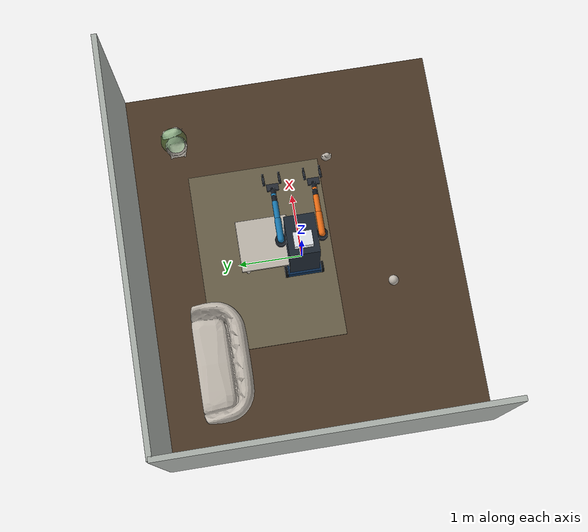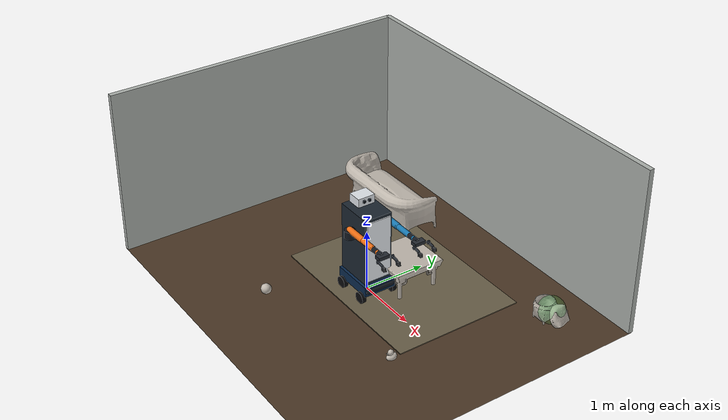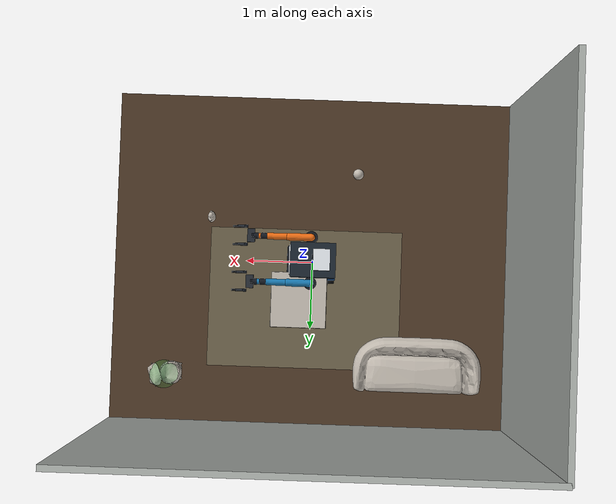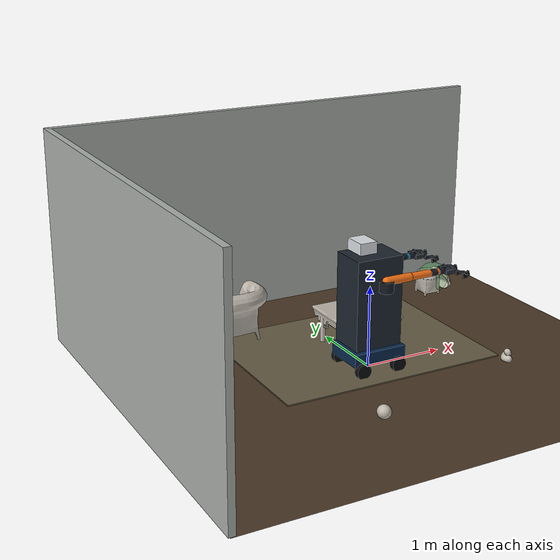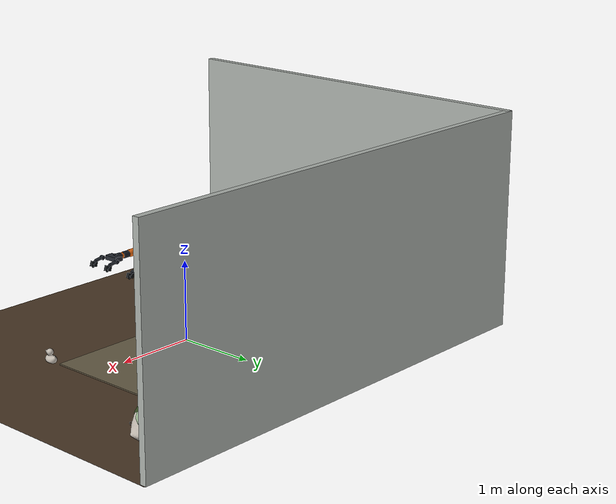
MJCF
<mujoco model="hwr_living_room_v1">
  <compiler angle="radian" autolimits="true" inertiafromgeom="true" meshdir="../../household_v1" texturedir="../../household_v1"/>
  <option timestep="0.002" gravity="0 0 -9.81" integrator="implicitfast">
    <flag multiccd="enable"/>
  </option>
  <size memory="128M"/>
  <visual>
    <global offwidth="960" offheight="640"/>
    <quality shadowsize="4096"/>
    <headlight ambient="0.20 0.20 0.20" diffuse="0.50 0.50 0.48" specular="0.18 0.18 0.18"/>
  </visual>
  <asset>
    <include file="../common/robot_assets.xml"/>
    <texture name="living_floor_tex" type="2d" builtin="checker" width="1024" height="1024" rgb1="0.23 0.17 0.12" rgb2="0.36 0.27 0.18" mark="edge" markrgb="0.08 0.06 0.04"/>
    <texture name="living_wall_tex" type="2d" builtin="gradient" width="512" height="512" rgb1="0.80 0.78 0.71" rgb2="0.55 0.61 0.64"/>
    <texture name="rug_tex" type="2d" builtin="checker" width="512" height="512" rgb1="0.14 0.27 0.31" rgb2="0.68 0.47 0.25"/>
    <material name="living_floor" texture="living_floor_tex" texrepeat="10 8" reflectance="0.06" roughness="0.72"/>
    <material name="living_wall" texture="living_wall_tex" texrepeat="2 2" roughness="0.85"/>
    <material name="rug" texture="rug_tex" texrepeat="7 5" roughness="0.95"/>
    <mesh name="living_sofa_mesh" file="living_sofa/living_sofa.obj"/>
    <texture name="living_sofa_tex" type="2d" file="living_sofa/sofa_02.png"/>
    <material name="living_sofa_mat" texture="living_sofa_tex" roughness="0.62"/>
    <mesh name="living_table_mesh" file="living_tea_table/living_tea_table.obj"/>
    <texture name="living_table_tex" type="2d" file="living_tea_table/chinese_tea_table.png"/>
    <material name="living_table_mat" texture="living_table_tex" roughness="0.48"/>
    <mesh name="living_basket_mesh" file="living_storage_basket/living_storage_basket.obj"/>
    <texture name="living_basket_tex" type="2d" file="living_storage_basket/wicker_basket_02.png"/>
    <material name="living_basket_mat" texture="living_basket_tex" roughness="0.84"/>
    <mesh name="toy_duck_mesh" file="toy_duck/toy_duck.obj"/>
    <texture name="toy_duck_tex" type="2d" file="toy_duck/rubber_duck_toy.png"/>
    <material name="toy_duck_mat" texture="toy_duck_tex" roughness="0.42"/>
    <mesh name="toy_football_mesh" file="toy_football/toy_football.obj"/>
    <texture name="toy_football_tex" type="2d" file="toy_football/football.png"/>
    <material name="toy_football_mat" texture="toy_football_tex" roughness="0.68"/>
  </asset>
  <default>
    <include file="../common/robot_defaults.xml"/>
  </default>
  <worldbody>
    <geom name="floor" type="plane" size="3 2.5 0.1" material="living_floor" friction="1.0 0.01 0.001"/>
    <geom name="wall_north" type="box" pos="0 2.48 1.35" size="3 0.04 1.35" material="living_wall"/>
    <geom name="wall_west" type="box" pos="-2.98 0 1.35" size="0.04 2.5 1.35" material="living_wall"/>
    <geom name="rug_visual" type="box" pos="0.10 0.55 0.008" size="1.45 1.05 0.008" material="rug" contype="0" conaffinity="0"/>
    <light name="living_key" pos="-1.4 -1.2 2.8" dir="0.3 0.4 -1" directional="true" castshadow="true" diffuse="0.88 0.75 0.60"/>
    <light name="living_window" pos="2.3 -1.7 1.9" dir="-0.8 0.4 -0.4" directional="true" castshadow="true" diffuse="0.48 0.62 0.82"/>
    <light name="living_lamp" pos="-1.9 1.6 2.0" diffuse="0.68 0.46 0.27" castshadow="true"/>
    <camera name="third_person" pos="4.6 -5.2 3.7" xyaxes="0.747 0.665 0 -0.354 0.398 0.846" fovy="47"/>
    <camera name="room_overview" pos="0 -0.5 5.8" xyaxes="1 0 0 0 1 0" fovy="55"/>
    <include file="../common/robot_body.xml"/>
    <body name="sofa" pos="-1.55 1.45 0" euler="0 0 3.14159">
      <geom name="sofa_visual" type="mesh" mesh="living_sofa_mesh" material="living_sofa_mat" contype="0" conaffinity="0" group="1"/>
      <geom name="sofa_seat_collision" type="box" pos="0 0.04 0.34" size="0.80 0.30 0.16" rgba="0 0 0 0" group="3"/>
      <geom name="sofa_back_collision" type="box" pos="0 0.34 0.53" size="0.88 0.10 0.30" rgba="0 0 0 0" group="3"/>
      <geom name="sofa_left_arm_collision" type="box" pos="0.83 0 0.43" size="0.09 0.36 0.28" rgba="0 0 0 0" group="3"/>
      <geom name="sofa_right_arm_collision" type="box" pos="-0.83 0 0.43" size="0.09 0.36 0.28" rgba="0 0 0 0" group="3"/>
    </body>
    <body name="tea_table" pos="0.18 0.56 0">
      <geom name="tea_table_visual" type="mesh" mesh="living_table_mesh" material="living_table_mat" contype="0" conaffinity="0" group="1"/>
      <geom name="tea_table_top_collision" type="box" pos="0 0 0.445" size="0.39 0.38 0.035" rgba="0 0 0 0" group="3"/>
      <geom name="tea_table_base_collision" type="box" pos="0 0 0.20" size="0.27 0.27 0.20" rgba="0 0 0 0" group="3"/>
    </body>
    <body name="storage_basket" pos="2.15 1.73 0">
      <geom name="storage_basket_visual" type="mesh" mesh="living_basket_mesh" material="living_basket_mat" contype="0" conaffinity="0" group="1"/>
      <geom name="basket_bottom_collision" type="box" pos="0 0 0.022" size="0.275 0.20 0.022" rgba="0 0 0 0" group="3"/>
      <geom name="basket_front_collision" type="box" pos="0 -0.19 0.16" size="0.275 0.018 0.16" rgba="0 0 0 0" group="3"/>
      <geom name="basket_back_collision" type="box" pos="0 0.19 0.16" size="0.275 0.018 0.16" rgba="0 0 0 0" group="3"/>
      <geom name="basket_left_collision" type="box" pos="-0.26 0 0.16" size="0.018 0.18 0.16" rgba="0 0 0 0" group="3"/>
      <geom name="basket_right_collision" type="box" pos="0.26 0 0.16" size="0.018 0.18 0.16" rgba="0 0 0 0" group="3"/>
      <site name="living_target_volume" pos="0 0 0.20" size="0.21 0.14 0.12" rgba="0.1 0.8 0.2 0.08"/>
    </body>
    <body name="toy_duck" pos="1.55 -0.65 0.0">
      <freejoint name="toy_duck_free"/>
      <geom name="toy_duck_visual" type="mesh" mesh="toy_duck_mesh" material="toy_duck_mat" mass="0" contype="0" conaffinity="0" group="1"/>
      <geom name="toy_duck_collision" type="box" pos="0 0 0.070" size="0.050 0.065 0.070" mass="0.11" friction="1.4 0.02 0.002" rgba="0 0 0 0" group="3"/>
    </body>
    <body name="toy_football" pos="-0.65 -1.35 0.077">
      <freejoint name="toy_football_free"/>
      <geom name="toy_football_visual" type="mesh" mesh="toy_football_mesh" material="toy_football_mat" mass="0" contype="0" conaffinity="0" group="1"/>
      <geom name="toy_football_collision" type="sphere" size="0.077" mass="0.13" friction="1.25 0.018 0.020" rgba="0 0 0 0" group="3"/>
    </body>
  </worldbody>
  <contact>
    <include file="../common/robot_contacts.xml"/>
    <pair geom1="right_gripper_left_pad" geom2="toy_duck_collision" condim="4"
          friction="3 3 0.04 0.004 0.004" solref="0.001 1" solimp="0.99 0.999 0.0001"/>
    <pair geom1="right_gripper_right_pad" geom2="toy_duck_collision" condim="4"
          friction="3 3 0.04 0.004 0.004" solref="0.001 1" solimp="0.99 0.999 0.0001"/>
    <pair geom1="right_gripper_left_pad" geom2="toy_football_collision" condim="4"
          friction="3 3 0.04 0.004 0.004" solref="0.001 1" solimp="0.99 0.999 0.0001"/>
    <pair geom1="right_gripper_right_pad" geom2="toy_football_collision" condim="4"
          friction="3 3 0.04 0.004 0.004" solref="0.001 1" solimp="0.99 0.999 0.0001"/>
  </contact>
  <actuator>
    <include file="../common/robot_actuators.xml"/>
  </actuator>
  <sensor>
    <include file="../common/robot_sensors.xml"/>
  </sensor>
</mujoco>

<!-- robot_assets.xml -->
<mujocoinclude>
  <material name="chassis_material" rgba="0.035 0.16 0.30 1" metallic="0.3" roughness="0.28"/>
  <material name="body_material" rgba="0.11 0.15 0.19 1" metallic="0.22" roughness="0.34"/>
  <material name="panel_material" rgba="0.92 0.94 0.96 1" metallic="0.08" roughness="0.28"/>
  <material name="arm_material" rgba="0.93 0.43 0.08 1" metallic="0.18" roughness="0.28"/>
  <material name="arm_secondary_material" rgba="0.10 0.48 0.70 1" metallic="0.18" roughness="0.28"/>
  <material name="joint_material" rgba="0.08 0.10 0.13 1" metallic="0.65" roughness="0.24"/>
  <material name="gripper_material" rgba="0.15 0.17 0.20 1" metallic="0.28" roughness="0.48"/>
  <material name="gripper_pad_material" rgba="0.035 0.045 0.055 1" metallic="0.02" roughness="0.86"/>
  <material name="wheel_material" rgba="0.035 0.04 0.05 1" metallic="0.05" roughness="0.72"/>
  <material name="camera_material" rgba="0.88 0.90 0.92 1" metallic="0.16" roughness="0.26"/>
  <material name="camera_lens_material" rgba="0.015 0.035 0.06 1" metallic="0.38" roughness="0.12"/>
</mujocoinclude>

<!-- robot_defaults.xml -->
<mujocoinclude>
  <joint damping="1.0" armature="0.02" frictionloss="0.05"/>
  <geom condim="4" friction="0.9 0.01 0.001" solref="0.006 1" solimp="0.9 0.95 0.001"/>
  <default class="arm_joint">
    <joint damping="2.0" armature="0.05"/>
  </default>
  <default class="finger_joint">
    <joint damping="3.0" armature="0.01"/>
  </default>
  <default class="finger_pad">
    <geom condim="4" friction="3.0 0.04 0.004" solref="0.004 1"/>
  </default>
</mujocoinclude>

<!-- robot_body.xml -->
<mujocoinclude>
  <body name="robot_base" pos="0 0 0.22">
    <freejoint name="base_free"/>
    <geom name="chassis_collision" type="box" size="0.34 0.26 0.08" density="400"
          material="chassis_material"/>
    <geom name="body_box_collision" type="box" pos="-0.01 0 0.65" size="0.30 0.23 0.55"
          density="65" material="body_material"/>
    <geom name="body_front_panel" type="box" pos="0.295 0 0.65" size="0.012 0.20 0.50"
          mass="0.05" contype="0" conaffinity="0" material="panel_material"/>
    <geom name="bumper_front" type="capsule" fromto="0.34 -0.21 0 0.34 0.21 0" size="0.035"
          density="300" material="joint_material"/>
    <site name="base_imu" pos="0 0 0.12" size="0.012" rgba="0 1 0 0"/>

    <body name="top_camera_head" pos="-0.12 0 1.31">
      <geom name="camera_head_pedestal" type="box" pos="0 0 -0.09" size="0.045 0.050 0.040"
            density="220" material="joint_material"/>
      <geom name="camera_head_housing" type="box" size="0.11 0.14 0.07" density="180"
            material="camera_material"/>
      <geom name="camera_rgb_lens" type="cylinder" pos="0.118 -0.045 0.01" size="0.026 0.012"
            quat="0.707107 0 0.707107 0" mass="0.02" contype="0" conaffinity="0"
            material="camera_lens_material"/>
      <geom name="camera_depth_lens" type="cylinder" pos="0.118 0.045 0.01" size="0.026 0.012"
            quat="0.707107 0 0.707107 0" mass="0.02" contype="0" conaffinity="0"
            material="camera_lens_material"/>
      <camera name="head_rgb" pos="0.13 -0.045 0.01" xyaxes="0 -1 0 0.16 0 0.987" fovy="66"/>
      <camera name="head_depth" pos="0.13 0.045 0.01" xyaxes="0 -1 0 0.16 0 0.987" fovy="66"/>
    </body>

    <body name="wheel_front_left" pos="0.24 0.27 -0.13">
      <joint name="wheel_front_left_joint" type="hinge" axis="0 1 0" limited="false" damping="0.15"/>
      <geom name="wheel_front_left_geom" type="cylinder" size="0.09 0.035"
            quat="0.707107 0.707107 0 0" density="450" material="wheel_material"
            friction="1.3 0.003 0.0002"/>
    </body>
    <body name="wheel_rear_left" pos="-0.24 0.27 -0.13">
      <joint name="wheel_rear_left_joint" type="hinge" axis="0 1 0" limited="false" damping="0.15"/>
      <geom name="wheel_rear_left_geom" type="cylinder" size="0.09 0.035"
            quat="0.707107 0.707107 0 0" density="450" material="wheel_material"
            friction="1.3 0.003 0.0002"/>
    </body>
    <body name="wheel_front_right" pos="0.24 -0.27 -0.13">
      <joint name="wheel_front_right_joint" type="hinge" axis="0 1 0" limited="false" damping="0.15"/>
      <geom name="wheel_front_right_geom" type="cylinder" size="0.09 0.035"
            quat="0.707107 0.707107 0 0" density="450" material="wheel_material"
            friction="1.3 0.003 0.0002"/>
    </body>
    <body name="wheel_rear_right" pos="-0.24 -0.27 -0.13">
      <joint name="wheel_rear_right_joint" type="hinge" axis="0 1 0" limited="false" damping="0.15"/>
      <geom name="wheel_rear_right_geom" type="cylinder" size="0.09 0.035"
            quat="0.707107 0.707107 0 0" density="450" material="wheel_material"
            friction="1.3 0.003 0.0002"/>
    </body>

    <body name="right_shoulder_pan_link" pos="0.02 -0.31 0.82" gravcomp="1">
      <joint name="right_arm_joint_1" class="arm_joint" type="hinge" axis="0 0 1" range="-3.05 3.05"/>
      <geom type="cylinder" size="0.085 0.065" pos="0 0 0.065" density="620" material="joint_material"/>
      <body name="right_upper_arm_link" pos="0 0 0.13" gravcomp="1">
        <joint name="right_arm_joint_2" class="arm_joint" type="hinge" axis="0 1 0" range="-1.75 1.45"/>
        <geom type="capsule" fromto="0 0 0 0.31 0 0" size="0.050" density="560" material="arm_material"/>
        <body name="right_forearm_link" pos="0.31 0 0" gravcomp="1">
          <joint name="right_arm_joint_3" class="arm_joint" type="hinge" axis="0 1 0" range="-2.55 2.55"/>
          <geom type="capsule" fromto="0 0 0 0.27 0 0" size="0.044" density="520" material="arm_material"/>
          <body name="right_wrist_roll_link" pos="0.27 0 0" gravcomp="1">
            <joint name="right_arm_joint_4" class="arm_joint" type="hinge" axis="1 0 0" range="-3.05 3.05"/>
            <geom type="capsule" fromto="0 0 0 0.09 0 0" size="0.040" density="500" material="joint_material"/>
            <body name="right_wrist_pitch_link" pos="0.09 0 0" gravcomp="1">
              <joint name="right_arm_joint_5" class="arm_joint" type="hinge" axis="0 1 0" range="-2.10 2.10"/>
              <geom type="capsule" fromto="0 0 0 0.08 0 0" size="0.037" density="480" material="arm_material"/>
              <body name="right_wrist_yaw_link" pos="0.08 0 0" gravcomp="1">
                <joint name="right_arm_joint_6" class="arm_joint" type="hinge" axis="1 0 0" range="-3.05 3.05"/>
                <geom type="cylinder" size="0.041 0.035" quat="0.707107 0 0.707107 0"
                      density="470" material="joint_material"/>
                <body name="right_gripper_palm" pos="0.065 0 0" gravcomp="1">
                  <geom name="right_gripper_palm_shell" type="box" size="0.050 0.090 0.026"
                        density="470" material="gripper_material"/>
                  <geom name="right_gripper_wrist_adapter" type="cylinder" pos="-0.035 0 0"
                        size="0.038 0.025" quat="0.707107 0 0.707107 0"
                        density="420" material="joint_material"/>
                  <camera name="wrist_rgb" pos="0.012 0 0.060" xyaxes="0 -1 0 0 0 1" fovy="72"/>
                  <site name="right_grasp_center" pos="0.190 0 -0.045" size="0.012" rgba="0 1 0 0"/>
                  <body name="right_gripper_left_finger" pos="0.070 0.122 -0.005" gravcomp="1">
                    <joint name="right_gripper_left_finger_joint" class="finger_joint" type="slide"
                           axis="0 -1 0" range="0 0.095"/>
                    <geom name="right_gripper_left_knuckle" type="cylinder" size="0.026 0.018"
                          quat="0.707107 0.707107 0 0" density="390"
                          material="joint_material"/>
                    <geom name="right_gripper_left_proximal" type="capsule"
                          fromto="0 0 0 0.100 0 -0.012" size="0.018" density="360"
                          material="gripper_material"/>
                    <geom name="right_gripper_left_distal" type="capsule"
                          fromto="0.100 0 -0.012 0.145 0 -0.047" size="0.016" density="340"
                          material="gripper_material"/>
                    <geom name="right_gripper_left_tip" type="capsule"
                          fromto="0.145 0 -0.047 0.145 0 -0.075" size="0.014" density="330"
                          material="gripper_material"/>
                    <geom name="right_gripper_left_pad" class="finger_pad" type="box"
                          size="0.045 0.012 0.030" pos="0.133 0 -0.045" euler="0 -0.30 0"
                          density="400" material="gripper_pad_material"/>
                  </body>
                  <body name="right_gripper_right_finger" pos="0.070 -0.122 -0.005" gravcomp="1">
                    <joint name="right_gripper_right_finger_joint" class="finger_joint" type="slide"
                           axis="0 1 0" range="0 0.095"/>
                    <geom name="right_gripper_right_knuckle" type="cylinder" size="0.026 0.018"
                          quat="0.707107 0.707107 0 0" density="390"
                          material="joint_material"/>
                    <geom name="right_gripper_right_proximal" type="capsule"
                          fromto="0 0 0 0.100 0 -0.012" size="0.018" density="360"
                          material="gripper_material"/>
                    <geom name="right_gripper_right_distal" type="capsule"
                          fromto="0.100 0 -0.012 0.145 0 -0.047" size="0.016" density="340"
                          material="gripper_material"/>
                    <geom name="right_gripper_right_tip" type="capsule"
                          fromto="0.145 0 -0.047 0.145 0 -0.075" size="0.014" density="330"
                          material="gripper_material"/>
                    <geom name="right_gripper_right_pad" class="finger_pad" type="box"
                          size="0.045 0.012 0.030" pos="0.133 0 -0.045" euler="0 -0.30 0"
                          density="400" material="gripper_pad_material"/>
                  </body>
                </body>
              </body>
            </body>
          </body>
        </body>
      </body>
    </body>

    <body name="left_shoulder_pan_link" pos="0.02 0.31 0.82" gravcomp="1">
      <joint name="left_arm_joint_1" class="arm_joint" type="hinge" axis="0 0 1" range="-3.05 3.05"/>
      <geom type="cylinder" size="0.085 0.065" pos="0 0 0.065" density="620" material="joint_material"/>
      <body name="left_upper_arm_link" pos="0 0 0.13" gravcomp="1">
        <joint name="left_arm_joint_2" class="arm_joint" type="hinge" axis="0 1 0" range="-1.75 1.45"/>
        <geom type="capsule" fromto="0 0 0 0.31 0 0" size="0.050" density="560" material="arm_secondary_material"/>
        <body name="left_forearm_link" pos="0.31 0 0" gravcomp="1">
          <joint name="left_arm_joint_3" class="arm_joint" type="hinge" axis="0 1 0" range="-2.55 2.55"/>
          <geom type="capsule" fromto="0 0 0 0.27 0 0" size="0.044" density="520" material="arm_secondary_material"/>
          <body name="left_wrist_roll_link" pos="0.27 0 0" gravcomp="1">
            <joint name="left_arm_joint_4" class="arm_joint" type="hinge" axis="1 0 0" range="-3.05 3.05"/>
            <geom type="capsule" fromto="0 0 0 0.09 0 0" size="0.040" density="500" material="joint_material"/>
            <body name="left_wrist_pitch_link" pos="0.09 0 0" gravcomp="1">
              <joint name="left_arm_joint_5" class="arm_joint" type="hinge" axis="0 1 0" range="-2.10 2.10"/>
              <geom type="capsule" fromto="0 0 0 0.08 0 0" size="0.037" density="480" material="arm_secondary_material"/>
              <body name="left_wrist_yaw_link" pos="0.08 0 0" gravcomp="1">
                <joint name="left_arm_joint_6" class="arm_joint" type="hinge" axis="1 0 0" range="-3.05 3.05"/>
                <geom type="cylinder" size="0.041 0.035" quat="0.707107 0 0.707107 0"
                      density="470" material="joint_material"/>
                <body name="left_gripper_palm" pos="0.065 0 0" gravcomp="1">
                  <geom name="left_gripper_palm_shell" type="box" size="0.050 0.090 0.026"
                        density="470" material="gripper_material"/>
                  <geom name="left_gripper_wrist_adapter" type="cylinder" pos="-0.035 0 0"
                        size="0.038 0.025" quat="0.707107 0 0.707107 0"
                        density="420" material="joint_material"/>
                  <camera name="left_wrist_rgb" pos="0.012 0 0.060" xyaxes="0 -1 0 0 0 1" fovy="72"/>
                  <site name="left_grasp_center" pos="0.190 0 -0.045" size="0.012" rgba="0 1 0 0"/>
                  <body name="left_gripper_left_finger" pos="0.070 0.122 -0.005" gravcomp="1">
                    <joint name="left_gripper_left_finger_joint" class="finger_joint" type="slide"
                           axis="0 -1 0" range="0 0.095"/>
                    <geom name="left_gripper_left_knuckle" type="cylinder" size="0.026 0.018"
                          quat="0.707107 0.707107 0 0" density="390"
                          material="joint_material"/>
                    <geom name="left_gripper_left_proximal" type="capsule"
                          fromto="0 0 0 0.100 0 -0.012" size="0.018" density="360"
                          material="gripper_material"/>
                    <geom name="left_gripper_left_distal" type="capsule"
                          fromto="0.100 0 -0.012 0.145 0 -0.047" size="0.016" density="340"
                          material="gripper_material"/>
                    <geom name="left_gripper_left_tip" type="capsule"
                          fromto="0.145 0 -0.047 0.145 0 -0.075" size="0.014" density="330"
                          material="gripper_material"/>
                    <geom name="left_gripper_left_pad" class="finger_pad" type="box"
                          size="0.045 0.012 0.030" pos="0.133 0 -0.045" euler="0 -0.30 0"
                          density="400" material="gripper_pad_material"/>
                  </body>
                  <body name="left_gripper_right_finger" pos="0.070 -0.122 -0.005" gravcomp="1">
                    <joint name="left_gripper_right_finger_joint" class="finger_joint" type="slide"
                           axis="0 1 0" range="0 0.095"/>
                    <geom name="left_gripper_right_knuckle" type="cylinder" size="0.026 0.018"
                          quat="0.707107 0.707107 0 0" density="390"
                          material="joint_material"/>
                    <geom name="left_gripper_right_proximal" type="capsule"
                          fromto="0 0 0 0.100 0 -0.012" size="0.018" density="360"
                          material="gripper_material"/>
                    <geom name="left_gripper_right_distal" type="capsule"
                          fromto="0.100 0 -0.012 0.145 0 -0.047" size="0.016" density="340"
                          material="gripper_material"/>
                    <geom name="left_gripper_right_tip" type="capsule"
                          fromto="0.145 0 -0.047 0.145 0 -0.075" size="0.014" density="330"
                          material="gripper_material"/>
                    <geom name="left_gripper_right_pad" class="finger_pad" type="box"
                          size="0.045 0.012 0.030" pos="0.133 0 -0.045" euler="0 -0.30 0"
                          density="400" material="gripper_pad_material"/>
                  </body>
                </body>
              </body>
            </body>
          </body>
        </body>
      </body>
    </body>
  </body>
</mujocoinclude>

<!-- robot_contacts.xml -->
<mujocoinclude>
  <exclude body1="robot_base" body2="right_shoulder_pan_link"/>
  <exclude body1="right_shoulder_pan_link" body2="right_upper_arm_link"/>
  <exclude body1="right_upper_arm_link" body2="right_forearm_link"/>
  <exclude body1="right_forearm_link" body2="right_wrist_roll_link"/>
  <exclude body1="right_wrist_roll_link" body2="right_wrist_pitch_link"/>
  <exclude body1="right_wrist_pitch_link" body2="right_wrist_yaw_link"/>
  <exclude body1="right_wrist_yaw_link" body2="right_gripper_palm"/>
  <exclude body1="right_gripper_palm" body2="right_gripper_left_finger"/>
  <exclude body1="right_gripper_palm" body2="right_gripper_right_finger"/>
  <exclude body1="robot_base" body2="left_shoulder_pan_link"/>
  <exclude body1="left_shoulder_pan_link" body2="left_upper_arm_link"/>
  <exclude body1="left_upper_arm_link" body2="left_forearm_link"/>
  <exclude body1="left_forearm_link" body2="left_wrist_roll_link"/>
  <exclude body1="left_wrist_roll_link" body2="left_wrist_pitch_link"/>
  <exclude body1="left_wrist_pitch_link" body2="left_wrist_yaw_link"/>
  <exclude body1="left_wrist_yaw_link" body2="left_gripper_palm"/>
  <exclude body1="left_gripper_palm" body2="left_gripper_left_finger"/>
  <exclude body1="left_gripper_palm" body2="left_gripper_right_finger"/>
</mujocoinclude>

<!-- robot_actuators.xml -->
<mujocoinclude>
  <velocity name="wheel_front_left_velocity" joint="wheel_front_left_joint" kv="18" forcerange="-30 30"/>
  <velocity name="wheel_rear_left_velocity" joint="wheel_rear_left_joint" kv="18" forcerange="-30 30"/>
  <velocity name="wheel_front_right_velocity" joint="wheel_front_right_joint" kv="18" forcerange="-30 30"/>
  <velocity name="wheel_rear_right_velocity" joint="wheel_rear_right_joint" kv="18" forcerange="-30 30"/>
  <position name="right_arm_joint_1_position" joint="right_arm_joint_1" kp="180" kv="24" forcerange="-75 75"/>
  <position name="right_arm_joint_2_position" joint="right_arm_joint_2" kp="180" kv="24" forcerange="-75 75"/>
  <position name="right_arm_joint_3_position" joint="right_arm_joint_3" kp="160" kv="20" forcerange="-60 60"/>
  <position name="right_arm_joint_4_position" joint="right_arm_joint_4" kp="100" kv="14" forcerange="-35 35"/>
  <position name="right_arm_joint_5_position" joint="right_arm_joint_5" kp="90" kv="12" forcerange="-30 30"/>
  <position name="right_arm_joint_6_position" joint="right_arm_joint_6" kp="70" kv="10" forcerange="-22 22"/>
  <position name="left_arm_joint_1_position" joint="left_arm_joint_1" kp="180" kv="24" forcerange="-75 75"/>
  <position name="left_arm_joint_2_position" joint="left_arm_joint_2" kp="180" kv="24" forcerange="-75 75"/>
  <position name="left_arm_joint_3_position" joint="left_arm_joint_3" kp="160" kv="20" forcerange="-60 60"/>
  <position name="left_arm_joint_4_position" joint="left_arm_joint_4" kp="100" kv="14" forcerange="-35 35"/>
  <position name="left_arm_joint_5_position" joint="left_arm_joint_5" kp="90" kv="12" forcerange="-30 30"/>
  <position name="left_arm_joint_6_position" joint="left_arm_joint_6" kp="70" kv="10" forcerange="-22 22"/>
  <position name="right_gripper_left_finger_position" joint="right_gripper_left_finger_joint"
            kp="260" kv="14" forcerange="-35 35"/>
  <position name="right_gripper_right_finger_position" joint="right_gripper_right_finger_joint"
            kp="260" kv="14" forcerange="-35 35"/>
  <position name="left_gripper_left_finger_position" joint="left_gripper_left_finger_joint"
            kp="260" kv="14" forcerange="-35 35"/>
  <position name="left_gripper_right_finger_position" joint="left_gripper_right_finger_joint"
            kp="260" kv="14" forcerange="-35 35"/>
</mujocoinclude>

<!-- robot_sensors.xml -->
<mujocoinclude>
  <gyro name="base_gyro" site="base_imu"/>
  <accelerometer name="base_accelerometer" site="base_imu"/>
</mujocoinclude>
